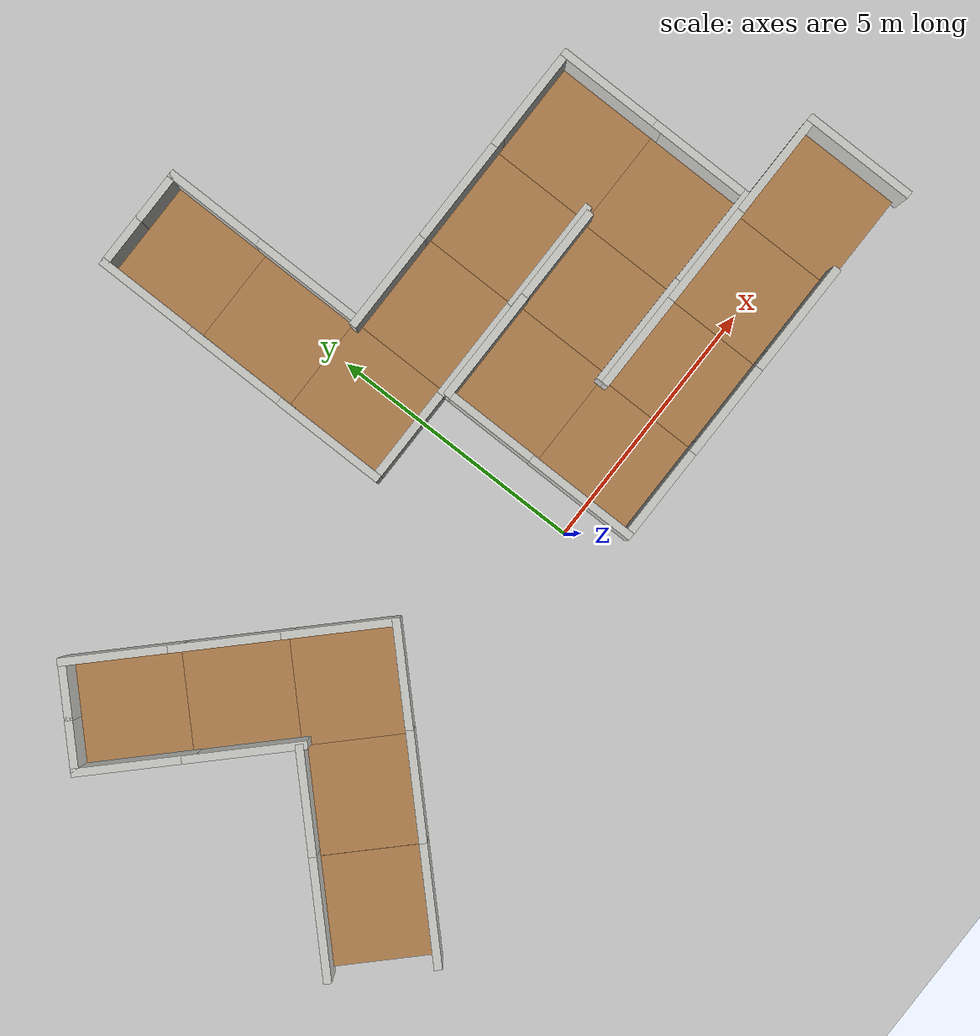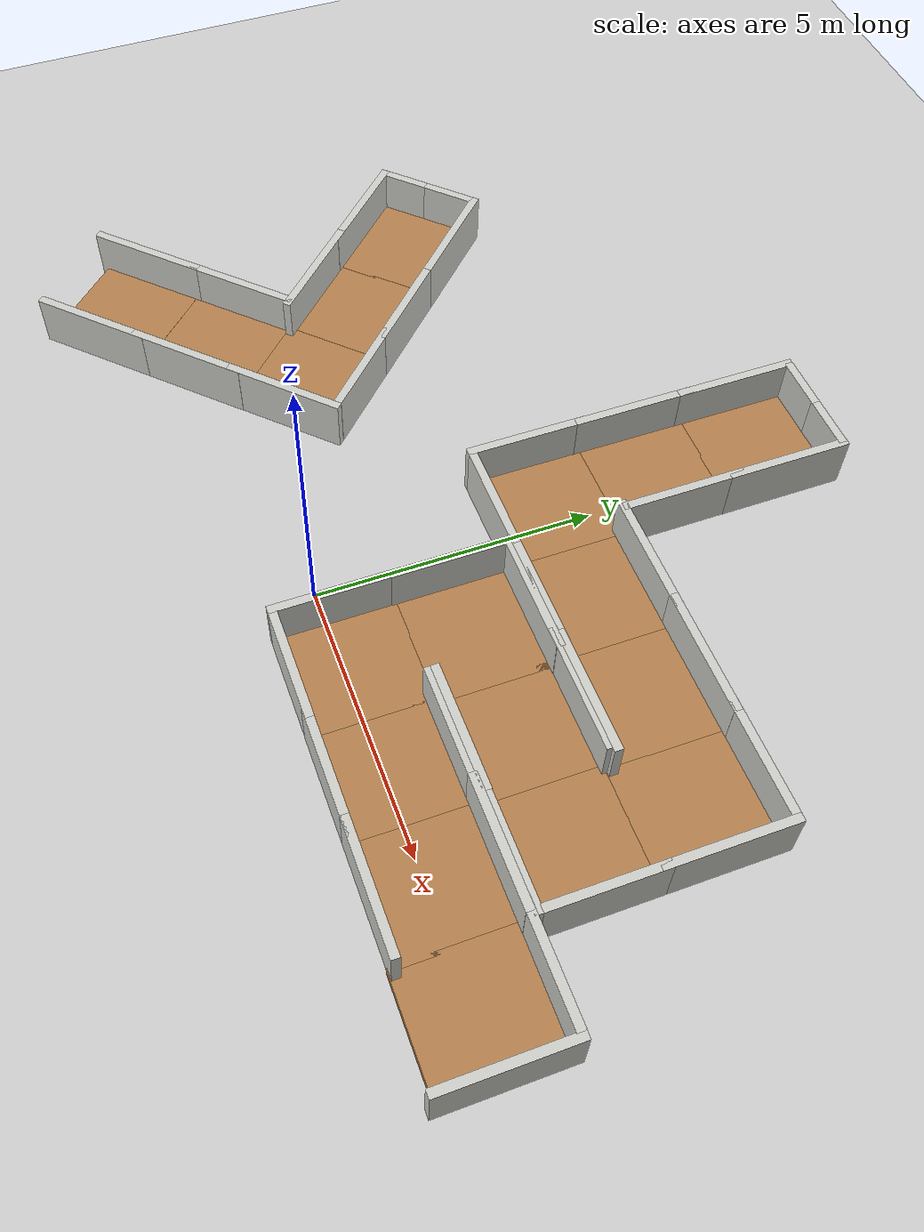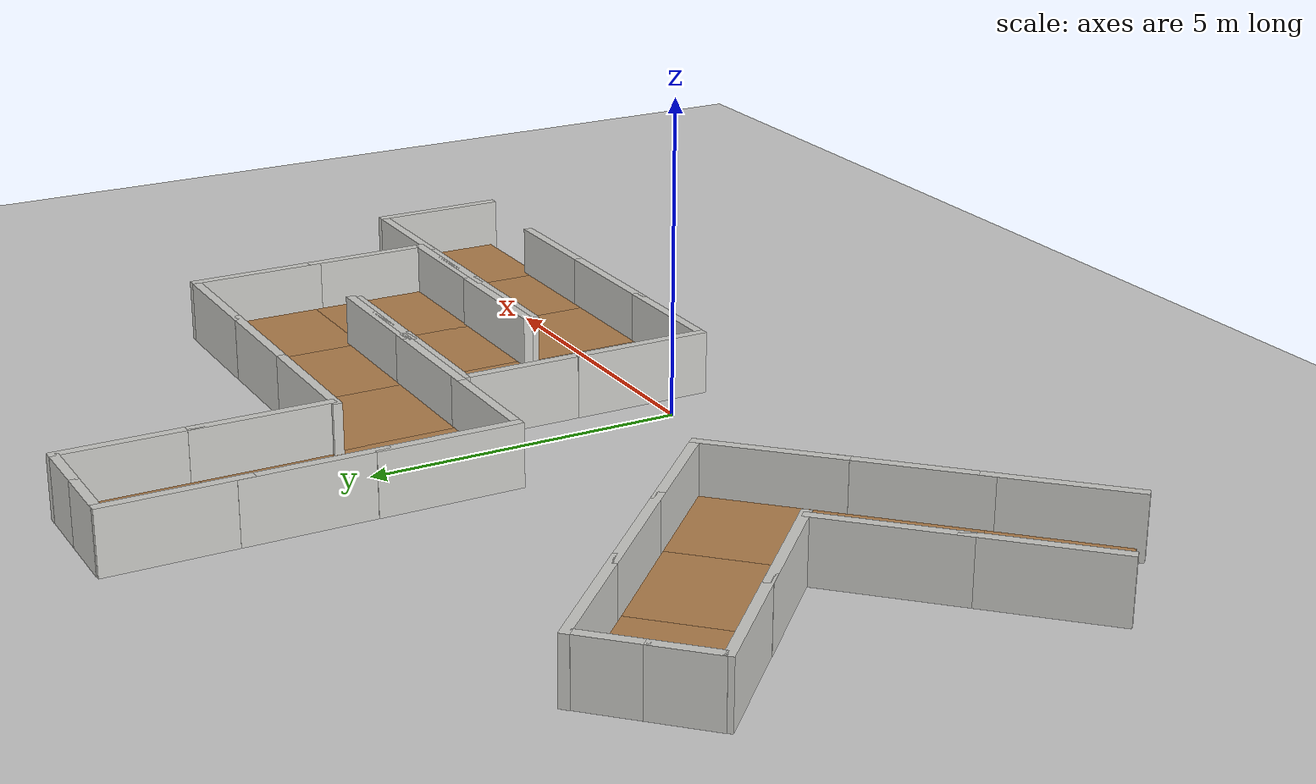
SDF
<sdf version="1.6">
 <world name="default">
  <model name="ground_plane">
   <static>1</static>
   <link name="link">
    <collision name="collision">
     <geometry><plane><normal>0 0 1</normal><size>100 100</size></plane></geometry>
     <surface><friction><ode><mu>100</mu><mu2>50</mu2></ode></friction></surface>
    </collision>
    <visual name="visual">
     <cast_shadows>0</cast_shadows>
     <geometry><plane><normal>0 0 1</normal><size>100 100</size></plane></geometry>
     <material>
      <script><uri>file://media/materials/scripts/gazebo.material</uri><name>Gazebo/Grey</name></script>
     </material>
    </visual>
   </link>
  </model>
  <model name="pg_maze_corner_0_clone">
   <pose>7.45381 0.055757 0 0 0 -1.57079</pose>
   <link name="Wall_0">
    <collision name="Wall_0_Collision">
     <geometry><box><size>2.01 2 0.2</size></box></geometry>
     <pose>0 0 0.1 0 -0 0</pose>
    </collision>
    <visual name="Wall_0_Visual">
     <pose>0 0 0.1 0 -0 0</pose>
     <geometry><box><size>2.01 2 0.2</size></box></geometry>
     <material>
      <script><uri>file://media/materials/scripts/gazebo.material</uri><name>Gazebo/Wood</name></script>
      <ambient>1 1 1 1</ambient>
     </material>
     <meta><layer>0</layer></meta>
    </visual>
    <pose>0.009575 0.005575 0 0 -0 0</pose>
   </link>
   <link name="Wall_2">
    <collision name="Wall_2_Collision">
     <geometry><box><size>2.25 0.15 1</size></box></geometry>
     <pose>0 0 0.5 0 -0 0</pose>
    </collision>
    <visual name="Wall_2_Visual">
     <pose>0 0 0.5 0 -0 0</pose>
     <geometry><box><size>2.25 0.15 1</size></box></geometry>
     <material>
      <script><uri>file://media/materials/scripts/gazebo.material</uri><name>Gazebo/CeilingTiled</name></script>
      <ambient>0.996078 0.47451 0.0196078 1</ambient>
     </material>
     <meta><layer>0</layer></meta>
    </visual>
    <pose>0.001575 0.991575 0 0 -0 0</pose>
   </link>
   <link name="Wall_4">
    <collision name="Wall_4_Collision">
     <geometry><box><size>2 0.15 1</size></box></geometry>
     <pose>0 0 0.5 0 -0 0</pose>
    </collision>
    <visual name="Wall_4_Visual">
     <pose>0 0 0.5 0 -0 0</pose>
     <geometry><box><size>2 0.15 1</size></box></geometry>
     <material>
      <script><uri>file://media/materials/scripts/gazebo.material</uri><name>Gazebo/CeilingTiled</name></script>
      <ambient>0.996078 0.47451 0.0196078 1</ambient>
     </material>
     <meta><layer>0</layer></meta>
    </visual>
    <pose>-1.05157 -0.066575 0 0 -0 1.5708</pose>
   </link>
   <static>1</static>
  </model>
  <model name="pg_maze_straight_2_clone">
   <pose>5.52215 0.11779 0 0 -0 0</pose>
   <link name="Wall_0">
    <collision name="Wall_0_Collision">
     <geometry><box><size>2.01 2 0.2</size></box></geometry>
     <pose>0 0 0.1 0 -0 0</pose>
    </collision>
    <visual name="Wall_0_Visual">
     <pose>0 0 0.1 0 -0 0</pose>
     <geometry><box><size>2.01 2 0.2</size></box></geometry>
     <material>
      <script><uri>file://media/materials/scripts/gazebo.material</uri><name>Gazebo/Wood</name></script>
      <ambient>1 1 1 1</ambient>
     </material>
     <meta><layer>0</layer></meta>
    </visual>
    <pose>0.003 -0.001 0 0 -0 0</pose>
   </link>
   <link name="Wall_2">
    <collision name="Wall_2_Collision">
     <geometry><box><size>2.25 0.15 1</size></box></geometry>
     <pose>0 0 0.5 0 -0 0</pose>
    </collision>
    <visual name="Wall_2_Visual">
     <pose>0 0 0.5 0 -0 0</pose>
     <geometry><box><size>2.25 0.15 1</size></box></geometry>
     <material>
      <script><uri>file://media/materials/scripts/gazebo.material</uri><name>Gazebo/CeilingTiled</name></script>
      <ambient>0.996078 0.47451 0.0196078 1</ambient>
     </material>
     <meta><layer>0</layer></meta>
    </visual>
    <pose>-0.005 0.985 0 0 -0 0</pose>
   </link>
   <link name="Wall_4">
    <collision name="Wall_4_Collision">
     <geometry><box><size>2.25 0.15 1</size></box></geometry>
     <pose>0 0 0.5 0 -0 0</pose>
    </collision>
    <visual name="Wall_4_Visual">
     <pose>0 0 0.5 0 -0 0</pose>
     <geometry><box><size>2.25 0.15 1</size></box></geometry>
     <material>
      <script><uri>file://media/materials/scripts/gazebo.material</uri><name>Gazebo/CeilingTiled</name></script>
      <ambient>0.996078 0.47451 0.0196078 1</ambient>
     </material>
     <meta><layer>0</layer></meta>
    </visual>
    <pose>0.005 -0.985 0 0 -0 0</pose>
   </link>
   <static>1</static>
  </model>
  <model name="pg_maze_straight_2_clone_0">
   <pose>3.62192 0.118087 0 0 -0 0</pose>
   <link name="Wall_0">
    <collision name="Wall_0_Collision">
     <geometry><box><size>2.01 2 0.2</size></box></geometry>
     <pose>0 0 0.1 0 -0 0</pose>
    </collision>
    <visual name="Wall_0_Visual">
     <pose>0 0 0.1 0 -0 0</pose>
     <geometry><box><size>2.01 2 0.2</size></box></geometry>
     <material>
      <script><uri>file://media/materials/scripts/gazebo.material</uri><name>Gazebo/Wood</name></script>
      <ambient>1 1 1 1</ambient>
     </material>
     <meta><layer>0</layer></meta>
    </visual>
    <pose>0.003 -0.001 0 0 -0 0</pose>
   </link>
   <link name="Wall_2">
    <collision name="Wall_2_Collision">
     <geometry><box><size>2.25 0.15 1</size></box></geometry>
     <pose>0 0 0.5 0 -0 0</pose>
    </collision>
    <visual name="Wall_2_Visual">
     <pose>0 0 0.5 0 -0 0</pose>
     <geometry><box><size>2.25 0.15 1</size></box></geometry>
     <material>
      <script><uri>file://media/materials/scripts/gazebo.material</uri><name>Gazebo/CeilingTiled</name></script>
      <ambient>0.996078 0.47451 0.0196078 1</ambient>
     </material>
     <meta><layer>0</layer></meta>
    </visual>
    <pose>-0.005 0.985 0 0 -0 0</pose>
   </link>
   <link name="Wall_4">
    <collision name="Wall_4_Collision">
     <geometry><box><size>2.25 0.15 1</size></box></geometry>
     <pose>0 0 0.5 0 -0 0</pose>
    </collision>
    <visual name="Wall_4_Visual">
     <pose>0 0 0.5 0 -0 0</pose>
     <geometry><box><size>2.25 0.15 1</size></box></geometry>
     <material>
      <script><uri>file://media/materials/scripts/gazebo.material</uri><name>Gazebo/CeilingTiled</name></script>
      <ambient>0.996078 0.47451 0.0196078 1</ambient>
     </material>
     <meta><layer>0</layer></meta>
    </visual>
    <pose>0.005 -0.985 0 0 -0 0</pose>
   </link>
   <static>1</static>
  </model>
  <model name="pg_maze_corner_clone">
   <pose>1.65438 0.188296 0 0 -0 1.5708</pose>
   <link name="Wall_0">
    <collision name="Wall_0_Collision">
     <geometry><box><size>2.01 2 0.2</size></box></geometry>
     <pose>0 0 0.1 0 -0 0</pose>
    </collision>
    <visual name="Wall_0_Visual">
     <pose>0 0 0.1 0 -0 0</pose>
     <geometry><box><size>2.01 2 0.2</size></box></geometry>
     <material>
      <script><uri>file://media/materials/scripts/gazebo.material</uri><name>Gazebo/Wood</name></script>
      <ambient>1 1 1 1</ambient>
     </material>
     <meta><layer>0</layer></meta>
    </visual>
    <pose>0.009575 0.005575 0 0 -0 0</pose>
   </link>
   <link name="Wall_2">
    <collision name="Wall_2_Collision">
     <geometry><box><size>2.25 0.15 1</size></box></geometry>
     <pose>0 0 0.5 0 -0 0</pose>
    </collision>
    <visual name="Wall_2_Visual">
     <pose>0 0 0.5 0 -0 0</pose>
     <geometry><box><size>2.25 0.15 1</size></box></geometry>
     <material>
      <script><uri>file://media/materials/scripts/gazebo.material</uri><name>Gazebo/CeilingTiled</name></script>
      <ambient>0.996078 0.47451 0.0196078 1</ambient>
     </material>
     <meta><layer>0</layer></meta>
    </visual>
    <pose>0.001575 0.991575 0 0 -0 0</pose>
   </link>
   <link name="Wall_4">
    <collision name="Wall_4_Collision">
     <geometry><box><size>2 0.15 1</size></box></geometry>
     <pose>0 0 0.5 0 -0 0</pose>
    </collision>
    <visual name="Wall_4_Visual">
     <pose>0 0 0.5 0 -0 0</pose>
     <geometry><box><size>2 0.15 1</size></box></geometry>
     <material>
      <script><uri>file://media/materials/scripts/gazebo.material</uri><name>Gazebo/CeilingTiled</name></script>
      <ambient>0.996078 0.47451 0.0196078 1</ambient>
     </material>
     <meta><layer>0</layer></meta>
    </visual>
    <pose>-1.05157 -0.066575 0 0 -0 1.5708</pose>
   </link>
   <static>1</static>
  </model>
  <model name="pg_maze_corner_clone_0">
   <pose>1.72046 2.18253 0 0 -0 0</pose>
   <link name="Wall_0">
    <collision name="Wall_0_Collision">
     <geometry><box><size>2.01 2 0.2</size></box></geometry>
     <pose>0 0 0.1 0 -0 0</pose>
    </collision>
    <visual name="Wall_0_Visual">
     <pose>0 0 0.1 0 -0 0</pose>
     <geometry><box><size>2.01 2 0.2</size></box></geometry>
     <material>
      <script><uri>file://media/materials/scripts/gazebo.material</uri><name>Gazebo/Wood</name></script>
      <ambient>1 1 1 1</ambient>
     </material>
     <meta><layer>0</layer></meta>
    </visual>
    <pose>0.009575 0.005575 0 0 -0 0</pose>
   </link>
   <link name="Wall_2">
    <collision name="Wall_2_Collision">
     <geometry><box><size>2.25 0.15 1</size></box></geometry>
     <pose>0 0 0.5 0 -0 0</pose>
    </collision>
    <visual name="Wall_2_Visual">
     <pose>0 0 0.5 0 -0 0</pose>
     <geometry><box><size>2.25 0.15 1</size></box></geometry>
     <material>
      <script><uri>file://media/materials/scripts/gazebo.material</uri><name>Gazebo/CeilingTiled</name></script>
      <ambient>0.996078 0.47451 0.0196078 1</ambient>
     </material>
     <meta><layer>0</layer></meta>
    </visual>
    <pose>0.001575 0.991575 0 0 -0 0</pose>
   </link>
   <link name="Wall_4">
    <collision name="Wall_4_Collision">
     <geometry><box><size>2 0.15 1</size></box></geometry>
     <pose>0 0 0.5 0 -0 0</pose>
    </collision>
    <visual name="Wall_4_Visual">
     <pose>0 0 0.5 0 -0 0</pose>
     <geometry><box><size>2 0.15 1</size></box></geometry>
     <material>
      <script><uri>file://media/materials/scripts/gazebo.material</uri><name>Gazebo/CeilingTiled</name></script>
      <ambient>0.996078 0.47451 0.0196078 1</ambient>
     </material>
     <meta><layer>0</layer></meta>
    </visual>
    <pose>-1.05157 -0.066575 0 0 -0 1.5708</pose>
   </link>
   <static>1</static>
  </model>
  <model name="pg_maze_straight_2_clone_clone">
   <pose>3.61056 2.1969 0 0 -0 0</pose>
   <link name="Wall_0">
    <collision name="Wall_0_Collision">
     <geometry><box><size>2.01 2 0.2</size></box></geometry>
     <pose>0 0 0.1 0 -0 0</pose>
    </collision>
    <visual name="Wall_0_Visual">
     <pose>0 0 0.1 0 -0 0</pose>
     <geometry><box><size>2.01 2 0.2</size></box></geometry>
     <material>
      <script><uri>file://media/materials/scripts/gazebo.material</uri><name>Gazebo/Wood</name></script>
      <ambient>1 1 1 1</ambient>
     </material>
     <meta><layer>0</layer></meta>
    </visual>
    <pose>0.003 -0.001 0 0 -0 0</pose>
   </link>
   <link name="Wall_2">
    <collision name="Wall_2_Collision">
     <geometry><box><size>2.25 0.15 1</size></box></geometry>
     <pose>0 0 0.5 0 -0 0</pose>
    </collision>
    <visual name="Wall_2_Visual">
     <pose>0 0 0.5 0 -0 0</pose>
     <geometry><box><size>2.25 0.15 1</size></box></geometry>
     <material>
      <script><uri>file://media/materials/scripts/gazebo.material</uri><name>Gazebo/CeilingTiled</name></script>
      <ambient>0.996078 0.47451 0.0196078 1</ambient>
     </material>
     <meta><layer>0</layer></meta>
    </visual>
    <pose>-0.005 0.985 0 0 -0 0</pose>
   </link>
   <link name="Wall_4">
    <collision name="Wall_4_Collision">
     <geometry><box><size>2.25 0.15 1</size></box></geometry>
     <pose>0 0 0.5 0 -0 0</pose>
    </collision>
    <visual name="Wall_4_Visual">
     <pose>0 0 0.5 0 -0 0</pose>
     <geometry><box><size>2.25 0.15 1</size></box></geometry>
     <material>
      <script><uri>file://media/materials/scripts/gazebo.material</uri><name>Gazebo/CeilingTiled</name></script>
      <ambient>0.996078 0.47451 0.0196078 1</ambient>
     </material>
     <meta><layer>0</layer></meta>
    </visual>
    <pose>0.005 -0.985 0 0 -0 0</pose>
   </link>
   <static>1</static>
  </model>
  <model name="pg_maze_corner_1_clone">
   <pose>5.60905 2.19231 0 0 -0 3.14159</pose>
   <link name="Wall_0">
    <collision name="Wall_0_Collision">
     <geometry><box><size>2.01 2 0.2</size></box></geometry>
     <pose>0 0 0.1 0 -0 0</pose>
    </collision>
    <visual name="Wall_0_Visual">
     <pose>0 0 0.1 0 -0 0</pose>
     <geometry><box><size>2.01 2 0.2</size></box></geometry>
     <material>
      <script><uri>file://media/materials/scripts/gazebo.material</uri><name>Gazebo/Wood</name></script>
      <ambient>1 1 1 1</ambient>
     </material>
     <meta><layer>0</layer></meta>
    </visual>
    <pose>0.009575 0.005575 0 0 -0 0</pose>
   </link>
   <link name="Wall_2">
    <collision name="Wall_2_Collision">
     <geometry><box><size>2.25 0.15 1</size></box></geometry>
     <pose>0 0 0.5 0 -0 0</pose>
    </collision>
    <visual name="Wall_2_Visual">
     <pose>0 0 0.5 0 -0 0</pose>
     <geometry><box><size>2.25 0.15 1</size></box></geometry>
     <material>
      <script><uri>file://media/materials/scripts/gazebo.material</uri><name>Gazebo/CeilingTiled</name></script>
      <ambient>0.996078 0.47451 0.0196078 1</ambient>
     </material>
     <meta><layer>0</layer></meta>
    </visual>
    <pose>0.001575 0.991575 0 0 -0 0</pose>
   </link>
   <link name="Wall_4">
    <collision name="Wall_4_Collision">
     <geometry><box><size>2 0.15 1</size></box></geometry>
     <pose>0 0 0.5 0 -0 0</pose>
    </collision>
    <visual name="Wall_4_Visual">
     <pose>0 0 0.5 0 -0 0</pose>
     <geometry><box><size>2 0.15 1</size></box></geometry>
     <material>
      <script><uri>file://media/materials/scripts/gazebo.material</uri><name>Gazebo/CeilingTiled</name></script>
      <ambient>0.996078 0.47451 0.0196078 1</ambient>
     </material>
     <meta><layer>0</layer></meta>
    </visual>
    <pose>-1.05157 -0.066575 0 0 -0 1.5708</pose>
   </link>
   <static>1</static>
  </model>
  <model name="pg_maze_corner_0_clone_clone">
   <pose>5.66864 4.19578 0 0 0 -1.57079</pose>
   <link name="Wall_0">
    <collision name="Wall_0_Collision">
     <geometry><box><size>2.01 2 0.2</size></box></geometry>
     <pose>0 0 0.1 0 -0 0</pose>
    </collision>
    <visual name="Wall_0_Visual">
     <pose>0 0 0.1 0 -0 0</pose>
     <geometry><box><size>2.01 2 0.2</size></box></geometry>
     <material>
      <script><uri>file://media/materials/scripts/gazebo.material</uri><name>Gazebo/Wood</name></script>
      <ambient>1 1 1 1</ambient>
     </material>
     <meta><layer>0</layer></meta>
    </visual>
    <pose>0.009575 0.005575 0 0 -0 0</pose>
   </link>
   <link name="Wall_2">
    <collision name="Wall_2_Collision">
     <geometry><box><size>2.25 0.15 1</size></box></geometry>
     <pose>0 0 0.5 0 -0 0</pose>
    </collision>
    <visual name="Wall_2_Visual">
     <pose>0 0 0.5 0 -0 0</pose>
     <geometry><box><size>2.25 0.15 1</size></box></geometry>
     <material>
      <script><uri>file://media/materials/scripts/gazebo.material</uri><name>Gazebo/CeilingTiled</name></script>
      <ambient>0.996078 0.47451 0.0196078 1</ambient>
     </material>
     <meta><layer>0</layer></meta>
    </visual>
    <pose>0.001575 0.991575 0 0 -0 0</pose>
   </link>
   <link name="Wall_4">
    <collision name="Wall_4_Collision">
     <geometry><box><size>2 0.15 1</size></box></geometry>
     <pose>0 0 0.5 0 -0 0</pose>
    </collision>
    <visual name="Wall_4_Visual">
     <pose>0 0 0.5 0 -0 0</pose>
     <geometry><box><size>2 0.15 1</size></box></geometry>
     <material>
      <script><uri>file://media/materials/scripts/gazebo.material</uri><name>Gazebo/CeilingTiled</name></script>
      <ambient>0.996078 0.47451 0.0196078 1</ambient>
     </material>
     <meta><layer>0</layer></meta>
    </visual>
    <pose>-1.05157 -0.066575 0 0 -0 1.5708</pose>
   </link>
   <static>1</static>
  </model>
  <model name="pg_maze_straight_2_clone_clone_clone">
   <pose>3.67422 4.26 0 0 -0 0</pose>
   <link name="Wall_0">
    <collision name="Wall_0_Collision">
     <geometry><box><size>2.01 2 0.2</size></box></geometry>
     <pose>0 0 0.1 0 -0 0</pose>
    </collision>
    <visual name="Wall_0_Visual">
     <pose>0 0 0.1 0 -0 0</pose>
     <geometry><box><size>2.01 2 0.2</size></box></geometry>
     <material>
      <script><uri>file://media/materials/scripts/gazebo.material</uri><name>Gazebo/Wood</name></script>
      <ambient>1 1 1 1</ambient>
     </material>
     <meta><layer>0</layer></meta>
    </visual>
    <pose>0.003 -0.001 0 0 -0 0</pose>
   </link>
   <link name="Wall_2">
    <collision name="Wall_2_Collision">
     <geometry><box><size>2.25 0.15 1</size></box></geometry>
     <pose>0 0 0.5 0 -0 0</pose>
    </collision>
    <visual name="Wall_2_Visual">
     <pose>0 0 0.5 0 -0 0</pose>
     <geometry><box><size>2.25 0.15 1</size></box></geometry>
     <material>
      <script><uri>file://media/materials/scripts/gazebo.material</uri><name>Gazebo/CeilingTiled</name></script>
      <ambient>0.996078 0.47451 0.0196078 1</ambient>
     </material>
     <meta><layer>0</layer></meta>
    </visual>
    <pose>-0.005 0.985 0 0 -0 0</pose>
   </link>
   <link name="Wall_4">
    <collision name="Wall_4_Collision">
     <geometry><box><size>2.25 0.15 1</size></box></geometry>
     <pose>0 0 0.5 0 -0 0</pose>
    </collision>
    <visual name="Wall_4_Visual">
     <pose>0 0 0.5 0 -0 0</pose>
     <geometry><box><size>2.25 0.15 1</size></box></geometry>
     <material>
      <script><uri>file://media/materials/scripts/gazebo.material</uri><name>Gazebo/CeilingTiled</name></script>
      <ambient>0.996078 0.47451 0.0196078 1</ambient>
     </material>
     <meta><layer>0</layer></meta>
    </visual>
    <pose>0.005 -0.985 0 0 -0 0</pose>
   </link>
   <static>1</static>
  </model>
  <model name="pg_maze_straight_2_clone_clone_clone_0">
   <pose>1.67903 4.26154 0 0 -0 0</pose>
   <link name="Wall_0">
    <collision name="Wall_0_Collision">
     <geometry><box><size>2.01 2 0.2</size></box></geometry>
     <pose>0 0 0.1 0 -0 0</pose>
    </collision>
    <visual name="Wall_0_Visual">
     <pose>0 0 0.1 0 -0 0</pose>
     <geometry><box><size>2.01 2 0.2</size></box></geometry>
     <material>
      <script><uri>file://media/materials/scripts/gazebo.material</uri><name>Gazebo/Wood</name></script>
      <ambient>1 1 1 1</ambient>
     </material>
     <meta><layer>0</layer></meta>
    </visual>
    <pose>0.003 -0.001 0 0 -0 0</pose>
   </link>
   <link name="Wall_2">
    <collision name="Wall_2_Collision">
     <geometry><box><size>2.25 0.15 1</size></box></geometry>
     <pose>0 0 0.5 0 -0 0</pose>
    </collision>
    <visual name="Wall_2_Visual">
     <pose>0 0 0.5 0 -0 0</pose>
     <geometry><box><size>2.25 0.15 1</size></box></geometry>
     <material>
      <script><uri>file://media/materials/scripts/gazebo.material</uri><name>Gazebo/CeilingTiled</name></script>
      <ambient>0.996078 0.47451 0.0196078 1</ambient>
     </material>
     <meta><layer>0</layer></meta>
    </visual>
    <pose>-0.005 0.985 0 0 -0 0</pose>
   </link>
   <link name="Wall_4">
    <collision name="Wall_4_Collision">
     <geometry><box><size>2.25 0.15 1</size></box></geometry>
     <pose>0 0 0.5 0 -0 0</pose>
    </collision>
    <visual name="Wall_4_Visual">
     <pose>0 0 0.5 0 -0 0</pose>
     <geometry><box><size>2.25 0.15 1</size></box></geometry>
     <material>
      <script><uri>file://media/materials/scripts/gazebo.material</uri><name>Gazebo/CeilingTiled</name></script>
      <ambient>0.996078 0.47451 0.0196078 1</ambient>
     </material>
     <meta><layer>0</layer></meta>
    </visual>
    <pose>0.005 -0.985 0 0 -0 0</pose>
   </link>
   <static>1</static>
  </model>
  <model name="pg_maze_straight_5">
   <pose>-7.36012 -1.48286 0 0 -0 0.785398</pose>
   <link name="Wall_0">
    <collision name="Wall_0_Collision">
     <geometry><box><size>2.01 2 0.2</size></box></geometry>
     <pose>0 0 0.1 0 -0 0</pose>
    </collision>
    <visual name="Wall_0_Visual">
     <pose>0 0 0.1 0 -0 0</pose>
     <geometry><box><size>2.01 2 0.2</size></box></geometry>
     <material>
      <script><uri>file://media/materials/scripts/gazebo.material</uri><name>Gazebo/Wood</name></script>
      <ambient>1 1 1 1</ambient>
     </material>
     <meta><layer>0</layer></meta>
    </visual>
    <pose>0.003 -0.001 0 0 -0 0</pose>
   </link>
   <link name="Wall_2">
    <collision name="Wall_2_Collision">
     <geometry><box><size>2.25 0.15 1</size></box></geometry>
     <pose>0 0 0.5 0 -0 0</pose>
    </collision>
    <visual name="Wall_2_Visual">
     <pose>0 0 0.5 0 -0 0</pose>
     <geometry><box><size>2.25 0.15 1</size></box></geometry>
     <material>
      <script><uri>file://media/materials/scripts/gazebo.material</uri><name>Gazebo/CeilingTiled</name></script>
      <ambient>0.996078 0.47451 0.0196078 1</ambient>
     </material>
     <meta><layer>0</layer></meta>
    </visual>
    <pose>-0.005 0.985 0 0 -0 0</pose>
   </link>
   <link name="Wall_4">
    <collision name="Wall_4_Collision">
     <geometry><box><size>2.25 0.15 1</size></box></geometry>
     <pose>0 0 0.5 0 -0 0</pose>
    </collision>
    <visual name="Wall_4_Visual">
     <pose>0 0 0.5 0 -0 0</pose>
     <geometry><box><size>2.25 0.15 1</size></box></geometry>
     <material>
      <script><uri>file://media/materials/scripts/gazebo.material</uri><name>Gazebo/CeilingTiled</name></script>
      <ambient>0.996078 0.47451 0.0196078 1</ambient>
     </material>
     <meta><layer>0</layer></meta>
    </visual>
    <pose>0.005 -0.985 0 0 -0 0</pose>
   </link>
   <static>1</static>
  </model>
  <model name="pg_maze_straight_5_clone">
   <pose>-5.93722 -0.059853 0 0 -0 0.785398</pose>
   <link name="Wall_0">
    <collision name="Wall_0_Collision">
     <geometry><box><size>2.01 2 0.2</size></box></geometry>
     <pose>0 0 0.1 0 -0 0</pose>
    </collision>
    <visual name="Wall_0_Visual">
     <pose>0 0 0.1 0 -0 0</pose>
     <geometry><box><size>2.01 2 0.2</size></box></geometry>
     <material>
      <script><uri>file://media/materials/scripts/gazebo.material</uri><name>Gazebo/Wood</name></script>
      <ambient>1 1 1 1</ambient>
     </material>
     <meta><layer>0</layer></meta>
    </visual>
    <pose>0.003 -0.001 0 0 -0 0</pose>
   </link>
   <link name="Wall_2">
    <collision name="Wall_2_Collision">
     <geometry><box><size>2.25 0.15 1</size></box></geometry>
     <pose>0 0 0.5 0 -0 0</pose>
    </collision>
    <visual name="Wall_2_Visual">
     <pose>0 0 0.5 0 -0 0</pose>
     <geometry><box><size>2.25 0.15 1</size></box></geometry>
     <material>
      <script><uri>file://media/materials/scripts/gazebo.material</uri><name>Gazebo/CeilingTiled</name></script>
      <ambient>0.996078 0.47451 0.0196078 1</ambient>
     </material>
     <meta><layer>0</layer></meta>
    </visual>
    <pose>-0.005 0.985 0 0 -0 0</pose>
   </link>
   <link name="Wall_4">
    <collision name="Wall_4_Collision">
     <geometry><box><size>2.25 0.15 1</size></box></geometry>
     <pose>0 0 0.5 0 -0 0</pose>
    </collision>
    <visual name="Wall_4_Visual">
     <pose>0 0 0.5 0 -0 0</pose>
     <geometry><box><size>2.25 0.15 1</size></box></geometry>
     <material>
      <script><uri>file://media/materials/scripts/gazebo.material</uri><name>Gazebo/CeilingTiled</name></script>
      <ambient>0.996078 0.47451 0.0196078 1</ambient>
     </material>
     <meta><layer>0</layer></meta>
    </visual>
    <pose>0.005 -0.985 0 0 -0 0</pose>
   </link>
   <static>1</static>
  </model>
  <model name="pg_maze_corner_0_clone_1">
   <pose>-4.52453 1.36756 0 0 0 -2.35619</pose>
   <link name="Wall_0">
    <collision name="Wall_0_Collision">
     <geometry><box><size>2.01 2 0.2</size></box></geometry>
     <pose>0 0 0.1 0 -0 0</pose>
    </collision>
    <visual name="Wall_0_Visual">
     <pose>0 0 0.1 0 -0 0</pose>
     <geometry><box><size>2.01 2 0.2</size></box></geometry>
     <material>
      <script><uri>file://media/materials/scripts/gazebo.material</uri><name>Gazebo/Wood</name></script>
      <ambient>1 1 1 1</ambient>
     </material>
     <meta><layer>0</layer></meta>
    </visual>
    <pose>0.009575 0.005575 0 0 -0 0</pose>
   </link>
   <link name="Wall_2">
    <collision name="Wall_2_Collision">
     <geometry><box><size>2.25 0.15 1</size></box></geometry>
     <pose>0 0 0.5 0 -0 0</pose>
    </collision>
    <visual name="Wall_2_Visual">
     <pose>0 0 0.5 0 -0 0</pose>
     <geometry><box><size>2.25 0.15 1</size></box></geometry>
     <material>
      <script><uri>file://media/materials/scripts/gazebo.material</uri><name>Gazebo/CeilingTiled</name></script>
      <ambient>0.996078 0.47451 0.0196078 1</ambient>
     </material>
     <meta><layer>0</layer></meta>
    </visual>
    <pose>0.001575 0.991575 0 0 -0 0</pose>
   </link>
   <link name="Wall_4">
    <collision name="Wall_4_Collision">
     <geometry><box><size>2 0.15 1</size></box></geometry>
     <pose>0 0 0.5 0 -0 0</pose>
    </collision>
    <visual name="Wall_4_Visual">
     <pose>0 0 0.5 0 -0 0</pose>
     <geometry><box><size>2 0.15 1</size></box></geometry>
     <material>
      <script><uri>file://media/materials/scripts/gazebo.material</uri><name>Gazebo/CeilingTiled</name></script>
      <ambient>0.996078 0.47451 0.0196078 1</ambient>
     </material>
     <meta><layer>0</layer></meta>
    </visual>
    <pose>-1.05157 -0.066575 0 0 -0 1.5708</pose>
   </link>
   <static>1</static>
  </model>
  <model name="pg_maze_straight_5_clone_clone">
   <pose>-5.85769 2.79565 0 0 0 -0.785398</pose>
   <link name="Wall_0">
    <collision name="Wall_0_Collision">
     <geometry><box><size>2.01 2 0.2</size></box></geometry>
     <pose>0 0 0.1 0 -0 0</pose>
    </collision>
    <visual name="Wall_0_Visual">
     <pose>0 0 0.1 0 -0 0</pose>
     <geometry><box><size>2.01 2 0.2</size></box></geometry>
     <material>
      <script><uri>file://media/materials/scripts/gazebo.material</uri><name>Gazebo/Wood</name></script>
      <ambient>1 1 1 1</ambient>
     </material>
     <meta><layer>0</layer></meta>
    </visual>
    <pose>0.003 -0.001 0 0 -0 0</pose>
   </link>
   <link name="Wall_2">
    <collision name="Wall_2_Collision">
     <geometry><box><size>2.25 0.15 1</size></box></geometry>
     <pose>0 0 0.5 0 -0 0</pose>
    </collision>
    <visual name="Wall_2_Visual">
     <pose>0 0 0.5 0 -0 0</pose>
     <geometry><box><size>2.25 0.15 1</size></box></geometry>
     <material>
      <script><uri>file://media/materials/scripts/gazebo.material</uri><name>Gazebo/CeilingTiled</name></script>
      <ambient>0.996078 0.47451 0.0196078 1</ambient>
     </material>
     <meta><layer>0</layer></meta>
    </visual>
    <pose>-0.005 0.985 0 0 -0 0</pose>
   </link>
   <link name="Wall_4">
    <collision name="Wall_4_Collision">
     <geometry><box><size>2.25 0.15 1</size></box></geometry>
     <pose>0 0 0.5 0 -0 0</pose>
    </collision>
    <visual name="Wall_4_Visual">
     <pose>0 0 0.5 0 -0 0</pose>
     <geometry><box><size>2.25 0.15 1</size></box></geometry>
     <material>
      <script><uri>file://media/materials/scripts/gazebo.material</uri><name>Gazebo/CeilingTiled</name></script>
      <ambient>0.996078 0.47451 0.0196078 1</ambient>
     </material>
     <meta><layer>0</layer></meta>
    </visual>
    <pose>0.005 -0.985 0 0 -0 0</pose>
   </link>
   <static>1</static>
  </model>
  <model name="pg_maze_straight_5_clone_clone_clone">
   <pose>-7.2449 4.18662 0 0 0 -0.785398</pose>
   <link name="Wall_0">
    <collision name="Wall_0_Collision">
     <geometry><box><size>2.01 2 0.2</size></box></geometry>
     <pose>0 0 0.1 0 -0 0</pose>
    </collision>
    <visual name="Wall_0_Visual">
     <pose>0 0 0.1 0 -0 0</pose>
     <geometry><box><size>2.01 2 0.2</size></box></geometry>
     <material>
      <script><uri>file://media/materials/scripts/gazebo.material</uri><name>Gazebo/Wood</name></script>
      <ambient>1 1 1 1</ambient>
     </material>
     <meta><layer>0</layer></meta>
    </visual>
    <pose>0.003 -0.001 0 0 -0 0</pose>
   </link>
   <link name="Wall_2">
    <collision name="Wall_2_Collision">
     <geometry><box><size>2.25 0.15 1</size></box></geometry>
     <pose>0 0 0.5 0 -0 0</pose>
    </collision>
    <visual name="Wall_2_Visual">
     <pose>0 0 0.5 0 -0 0</pose>
     <geometry><box><size>2.25 0.15 1</size></box></geometry>
     <material>
      <script><uri>file://media/materials/scripts/gazebo.material</uri><name>Gazebo/CeilingTiled</name></script>
      <ambient>0.996078 0.47451 0.0196078 1</ambient>
     </material>
     <meta><layer>0</layer></meta>
    </visual>
    <pose>-0.005 0.985 0 0 -0 0</pose>
   </link>
   <link name="Wall_4">
    <collision name="Wall_4_Collision">
     <geometry><box><size>2.25 0.15 1</size></box></geometry>
     <pose>0 0 0.5 0 -0 0</pose>
    </collision>
    <visual name="Wall_4_Visual">
     <pose>0 0 0.5 0 -0 0</pose>
     <geometry><box><size>2.25 0.15 1</size></box></geometry>
     <material>
      <script><uri>file://media/materials/scripts/gazebo.material</uri><name>Gazebo/CeilingTiled</name></script>
      <ambient>0.996078 0.47451 0.0196078 1</ambient>
     </material>
     <meta><layer>0</layer></meta>
    </visual>
    <pose>0.005 -0.985 0 0 -0 0</pose>
   </link>
   <static>1</static>
  </model>
  <model name="pg_maze_obstacle_3">
   <pose>-7.67939 5.23676 0 0 -0 0.785398</pose>
   <link name="Wall_2">
    <collision name="Wall_2_Collision">
     <geometry><box><size>1 0.15 1</size></box></geometry>
     <pose>0 0 0.5 0 -0 0</pose>
    </collision>
    <visual name="Wall_2_Visual">
     <pose>0 0 0.5 0 -0 0</pose>
     <geometry><box><size>1 0.15 1</size></box></geometry>
     <material>
      <script><uri>file://media/materials/scripts/gazebo.material</uri><name>Gazebo/CeilingTiled</name></script>
      <ambient>0.996078 0.47451 0.0196078 1</ambient>
     </material>
     <meta><layer>0</layer></meta>
    </visual>
   </link>
   <static>1</static>
  </model>
  <model name="pg_maze_obstacle_3_clone">
   <pose>-8.32557 4.59098 0 0 -0 0.785398</pose>
   <link name="Wall_2">
    <collision name="Wall_2_Collision">
     <geometry><box><size>1 0.15 1</size></box></geometry>
     <pose>0 0 0.5 0 -0 0</pose>
    </collision>
    <visual name="Wall_2_Visual">
     <pose>0 0 0.5 0 -0 0</pose>
     <geometry><box><size>1 0.15 1</size></box></geometry>
     <material>
      <script><uri>file://media/materials/scripts/gazebo.material</uri><name>Gazebo/CeilingTiled</name></script>
      <ambient>0.996078 0.47451 0.0196078 1</ambient>
     </material>
     <meta><layer>0</layer></meta>
    </visual>
   </link>
   <static>1</static>
  </model>
  <model name="pg_maze_corner_0_clone_1_clone">
   <pose>-0.301148 4.32906 0 0 -0 1.5708</pose>
   <link name="Wall_0">
    <collision name="Wall_0_Collision">
     <geometry><box><size>2.01 2 0.2</size></box></geometry>
     <pose>0 0 0.1 0 -0 0</pose>
    </collision>
    <visual name="Wall_0_Visual">
     <pose>0 0 0.1 0 -0 0</pose>
     <geometry><box><size>2.01 2 0.2</size></box></geometry>
     <material>
      <script><uri>file://media/materials/scripts/gazebo.material</uri><name>Gazebo/Wood</name></script>
      <ambient>1 1 1 1</ambient>
     </material>
     <meta><layer>0</layer></meta>
    </visual>
    <pose>0.009575 0.005575 0 0 -0 0</pose>
   </link>
   <link name="Wall_2">
    <collision name="Wall_2_Collision">
     <geometry><box><size>2.25 0.15 1</size></box></geometry>
     <pose>0 0 0.5 0 -0 0</pose>
    </collision>
    <visual name="Wall_2_Visual">
     <pose>0 0 0.5 0 -0 0</pose>
     <geometry><box><size>2.25 0.15 1</size></box></geometry>
     <material>
      <script><uri>file://media/materials/scripts/gazebo.material</uri><name>Gazebo/CeilingTiled</name></script>
      <ambient>0.996078 0.47451 0.0196078 1</ambient>
     </material>
     <meta><layer>0</layer></meta>
    </visual>
    <pose>0.001575 0.991575 0 0 -0 0</pose>
   </link>
   <link name="Wall_4">
    <collision name="Wall_4_Collision">
     <geometry><box><size>2 0.15 1</size></box></geometry>
     <pose>0 0 0.5 0 -0 0</pose>
    </collision>
    <visual name="Wall_4_Visual">
     <pose>0 0 0.5 0 -0 0</pose>
     <geometry><box><size>2 0.15 1</size></box></geometry>
     <material>
      <script><uri>file://media/materials/scripts/gazebo.material</uri><name>Gazebo/CeilingTiled</name></script>
      <ambient>0.996078 0.47451 0.0196078 1</ambient>
     </material>
     <meta><layer>0</layer></meta>
    </visual>
    <pose>-1.05157 -0.066575 0 0 -0 1.5708</pose>
   </link>
   <static>1</static>
  </model>
  <model name="pg_maze_straight_5_clone_clone_clone_0">
   <pose>-0.30241 6.34792 0 0 0 -1.5708</pose>
   <link name="Wall_0">
    <collision name="Wall_0_Collision">
     <geometry><box><size>2.01 2 0.2</size></box></geometry>
     <pose>0 0 0.1 0 -0 0</pose>
    </collision>
    <visual name="Wall_0_Visual">
     <pose>0 0 0.1 0 -0 0</pose>
     <geometry><box><size>2.01 2 0.2</size></box></geometry>
     <material>
      <script><uri>file://media/materials/scripts/gazebo.material</uri><name>Gazebo/Wood</name></script>
      <ambient>1 1 1 1</ambient>
     </material>
     <meta><layer>0</layer></meta>
    </visual>
    <pose>0.003 -0.001 0 0 -0 0</pose>
   </link>
   <link name="Wall_2">
    <collision name="Wall_2_Collision">
     <geometry><box><size>2.25 0.15 1</size></box></geometry>
     <pose>0 0 0.5 0 -0 0</pose>
    </collision>
    <visual name="Wall_2_Visual">
     <pose>0 0 0.5 0 -0 0</pose>
     <geometry><box><size>2.25 0.15 1</size></box></geometry>
     <material>
      <script><uri>file://media/materials/scripts/gazebo.material</uri><name>Gazebo/CeilingTiled</name></script>
      <ambient>0.996078 0.47451 0.0196078 1</ambient>
     </material>
     <meta><layer>0</layer></meta>
    </visual>
    <pose>-0.005 0.985 0 0 -0 0</pose>
   </link>
   <link name="Wall_4">
    <collision name="Wall_4_Collision">
     <geometry><box><size>2.25 0.15 1</size></box></geometry>
     <pose>0 0 0.5 0 -0 0</pose>
    </collision>
    <visual name="Wall_4_Visual">
     <pose>0 0 0.5 0 -0 0</pose>
     <geometry><box><size>2.25 0.15 1</size></box></geometry>
     <material>
      <script><uri>file://media/materials/scripts/gazebo.material</uri><name>Gazebo/CeilingTiled</name></script>
      <ambient>0.996078 0.47451 0.0196078 1</ambient>
     </material>
     <meta><layer>0</layer></meta>
    </visual>
    <pose>0.005 -0.985 0 0 -0 0</pose>
   </link>
   <static>1</static>
  </model>
  <model name="pg_maze_straight_5_clone_clone_clone_0_clone">
   <pose>-0.299541 8.32608 0 0 0 -1.5708</pose>
   <link name="Wall_0">
    <collision name="Wall_0_Collision">
     <geometry><box><size>2.01 2 0.2</size></box></geometry>
     <pose>0 0 0.1 0 -0 0</pose>
    </collision>
    <visual name="Wall_0_Visual">
     <pose>0 0 0.1 0 -0 0</pose>
     <geometry><box><size>2.01 2 0.2</size></box></geometry>
     <material>
      <script><uri>file://media/materials/scripts/gazebo.material</uri><name>Gazebo/Wood</name></script>
      <ambient>1 1 1 1</ambient>
     </material>
     <meta><layer>0</layer></meta>
    </visual>
    <pose>0.003 -0.001 0 0 -0 0</pose>
   </link>
   <link name="Wall_2">
    <collision name="Wall_2_Collision">
     <geometry><box><size>2.25 0.15 1</size></box></geometry>
     <pose>0 0 0.5 0 -0 0</pose>
    </collision>
    <visual name="Wall_2_Visual">
     <pose>0 0 0.5 0 -0 0</pose>
     <geometry><box><size>2.25 0.15 1</size></box></geometry>
     <material>
      <script><uri>file://media/materials/scripts/gazebo.material</uri><name>Gazebo/CeilingTiled</name></script>
      <ambient>0.996078 0.47451 0.0196078 1</ambient>
     </material>
     <meta><layer>0</layer></meta>
    </visual>
    <pose>-0.005 0.985 0 0 -0 0</pose>
   </link>
   <link name="Wall_4">
    <collision name="Wall_4_Collision">
     <geometry><box><size>2.25 0.15 1</size></box></geometry>
     <pose>0 0 0.5 0 -0 0</pose>
    </collision>
    <visual name="Wall_4_Visual">
     <pose>0 0 0.5 0 -0 0</pose>
     <geometry><box><size>2.25 0.15 1</size></box></geometry>
     <material>
      <script><uri>file://media/materials/scripts/gazebo.material</uri><name>Gazebo/CeilingTiled</name></script>
      <ambient>0.996078 0.47451 0.0196078 1</ambient>
     </material>
     <meta><layer>0</layer></meta>
    </visual>
    <pose>0.005 -0.985 0 0 -0 0</pose>
   </link>
   <static>1</static>
  </model>
  <model name="pg_maze_obstacle_3_clone_0">
   <pose>0.187686 9.378 0 0 -0 0</pose>
   <link name="Wall_2">
    <collision name="Wall_2_Collision">
     <geometry><box><size>1 0.15 1</size></box></geometry>
     <pose>0 0 0.5 0 -0 0</pose>
    </collision>
    <visual name="Wall_2_Visual">
     <pose>0 0 0.5 0 -0 0</pose>
     <geometry><box><size>1 0.15 1</size></box></geometry>
     <material>
      <script><uri>file://media/materials/scripts/gazebo.material</uri><name>Gazebo/CeilingTiled</name></script>
      <ambient>0.996078 0.47451 0.0196078 1</ambient>
     </material>
     <meta><layer>0</layer></meta>
    </visual>
   </link>
   <static>1</static>
  </model>
  <model name="pg_maze_obstacle_3_clone_0_clone">
   <pose>-0.781962 9.37881 0 0 -0 0</pose>
   <link name="Wall_2">
    <collision name="Wall_2_Collision">
     <geometry><box><size>1 0.15 1</size></box></geometry>
     <pose>0 0 0.5 0 -0 0</pose>
    </collision>
    <visual name="Wall_2_Visual">
     <pose>0 0 0.5 0 -0 0</pose>
     <geometry><box><size>1 0.15 1</size></box></geometry>
     <material>
      <script><uri>file://media/materials/scripts/gazebo.material</uri><name>Gazebo/CeilingTiled</name></script>
      <ambient>0.996078 0.47451 0.0196078 1</ambient>
     </material>
     <meta><layer>0</layer></meta>
    </visual>
   </link>
   <static>1</static>
  </model>
 </world>
</sdf>
